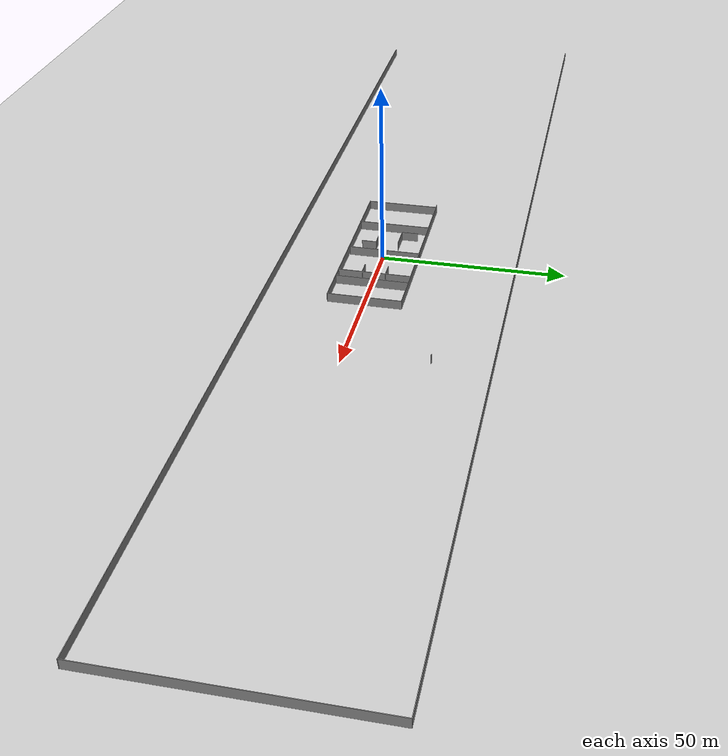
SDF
<sdf version="1.7">
 <world name="default">
  <light name="sun" type="directional">
   <pose>0 0 10 0 -0 0</pose>
   <diffuse>0.8 0.8 0.8 1</diffuse>
   <specular>0.2 0.2 0.2 1</specular>
   <attenuation>
    <range>1000</range>
    <constant>0.9</constant>
    <linear>0.01</linear>
    <quadratic>0.001</quadratic>
   </attenuation>
   <direction>-0.5 0.1 -0.9</direction>
   <spot><inner_angle>0</inner_angle><outer_angle>0</outer_angle><falloff>0</falloff></spot>
  </light>
  <model name="ground_plane">
   <static>1</static>
   <link name="link">
    <collision name="collision">
     <geometry><plane><normal>0 0 1</normal><size>100 100</size></plane></geometry>
     <surface>
      <contact><collide_bitmask>65535</collide_bitmask></contact>
      <friction><ode><mu>100</mu><mu2>50</mu2></ode></friction>
     </surface>
    </collision>
    <visual name="visual">
     <cast_shadows>0</cast_shadows>
     <geometry><plane><normal>0 0 1</normal><size>100 100</size></plane></geometry>
     <material>
      <script><uri>file://media/materials/scripts/gazebo.material</uri><name>Gazebo/Grey</name></script>
     </material>
    </visual>
   </link>
  </model>
  <gravity>0 0 -9.8</gravity>
  <magnetic_field>6e-06 2.3e-05 -4.2e-05</magnetic_field>
  <atmosphere type="adiabatic"/>
  <physics type="ode">
   <max_step_size>0.001</max_step_size>
   <real_time_factor>1</real_time_factor>
   <real_time_update_rate>1000</real_time_update_rate>
  </physics>
  <scene><ambient>0.4 0.4 0.4 1</ambient><background>0.7 0.7 0.7 1</background><shadows>1</shadows></scene>
  <spherical_coordinates>
   <surface_model>EARTH_WGS84</surface_model>
   <latitude_deg>0</latitude_deg>
   <longitude_deg>0</longitude_deg>
   <elevation>0</elevation>
   <heading_deg>0</heading_deg>
  </spherical_coordinates>
  <model name="LabWorld">
   <pose>-3.44193 5.2773 0 0 -0 0</pose>
   <link name="Wall_12">
    <collision name="Wall_12_Collision">
     <geometry><box><size>304 0.15 2.5</size></box></geometry>
     <pose>0 0 1.25 0 -0 0</pose>
    </collision>
    <visual name="Wall_12_Visual">
     <pose>0 0 1.25 0 -0 0</pose>
     <geometry><box><size>304 0.15 2.5</size></box></geometry>
     <material>
      <script><uri>file://media/materials/scripts/gazebo.material</uri><name>Gazebo/Grey</name></script>
      <ambient>1 1 1 1</ambient>
     </material>
     <meta><layer>0</layer></meta>
    </visual>
    <pose>-1e-06 31.675 0 0 -0 0</pose>
   </link>
   <link name="Wall_13">
    <collision name="Wall_13_Collision">
     <geometry><box><size>63.5 0.15 2.5</size></box></geometry>
     <pose>0 0 1.25 0 -0 0</pose>
    </collision>
    <visual name="Wall_13_Visual">
     <pose>0 0 1.25 0 -0 0</pose>
     <geometry><box><size>63.5 0.15 2.5</size></box></geometry>
     <material>
      <script><uri>file://media/materials/scripts/gazebo.material</uri><name>Gazebo/Grey</name></script>
      <ambient>1 1 1 1</ambient>
     </material>
     <meta><layer>0</layer></meta>
    </visual>
    <pose>151.925 1e-06 0 0 -0 -1.5708</pose>
   </link>
   <link name="Wall_14">
    <collision name="Wall_14_Collision">
     <geometry><box><size>295.5 0.15 2.5</size></box></geometry>
     <pose>0 0 1.25 0 -0 0</pose>
    </collision>
    <visual name="Wall_14_Visual">
     <pose>0 0 1.25 0 -0 0</pose>
     <geometry><box><size>295.5 0.15 2.5</size></box></geometry>
     <material>
      <script><uri>file://media/materials/scripts/gazebo.material</uri><name>Gazebo/Grey</name></script>
      <ambient>1 1 1 1</ambient>
     </material>
     <meta><layer>0</layer></meta>
    </visual>
    <pose>4.25 -31.675 0 0 -0 3.14159</pose>
   </link>
   <link name="Wall_16">
    <collision name="Wall_16_Collision">
     <geometry><box><size>0.5 0.15 2.5</size></box></geometry>
     <pose>0 0 1.25 0 -0 0</pose>
    </collision>
    <visual name="Wall_16_Visual">
     <pose>0 0 1.25 0 -0 0</pose>
     <geometry><box><size>0.5 0.15 2.5</size></box></geometry>
     <material>
      <script><uri>file://media/materials/scripts/gazebo.material</uri><name>Gazebo/Grey</name></script>
      <ambient>1 1 1 1</ambient>
     </material>
     <meta><layer>0</layer></meta>
    </visual>
    <pose>49.3487 16.4897 0 0 -0 -0.261799</pose>
   </link>
   <link name="Wall_18">
    <collision name="Wall_18_Collision">
     <geometry><box><size>52.5 0.15 2.5</size></box></geometry>
     <pose>0 0 1.25 0 -0 0</pose>
    </collision>
    <visual name="Wall_18_Visual">
     <pose>0 0 1.25 0 -0 0</pose>
     <geometry><box><size>52.5 0.15 2.5</size></box></geometry>
     <material>
      <script><uri>file://media/materials/scripts/gazebo.material</uri><name>Gazebo/Grey</name></script>
      <ambient>1 1 1 1</ambient>
     </material>
     <meta><layer>0</layer></meta>
    </visual>
    <pose>1.51153 4.82296 0 0 -0 0</pose>
   </link>
   <link name="Wall_19">
    <collision name="Wall_19_Collision">
     <geometry><box><size>19.75 0.15 2.5</size></box></geometry>
     <pose>0 0 1.25 0 -0 0</pose>
    </collision>
    <visual name="Wall_19_Visual">
     <pose>0 0 1.25 0 -0 0</pose>
     <geometry><box><size>19.75 0.15 2.5</size></box></geometry>
     <material>
      <script><uri>file://media/materials/scripts/gazebo.material</uri><name>Gazebo/Grey</name></script>
      <ambient>1 1 1 1</ambient>
     </material>
     <meta><layer>0</layer></meta>
    </visual>
    <pose>27.6865 -4.97704 0 0 -0 -1.5708</pose>
   </link>
   <link name="Wall_20">
    <collision name="Wall_20_Collision">
     <geometry><box><size>51.25 0.15 2.5</size></box></geometry>
     <pose>0 0 1.25 0 -0 0</pose>
    </collision>
    <visual name="Wall_20_Visual">
     <pose>0 0 1.25 0 -0 0</pose>
     <geometry><box><size>51.25 0.15 2.5</size></box></geometry>
     <material>
      <script><uri>file://media/materials/scripts/gazebo.material</uri><name>Gazebo/Grey</name></script>
      <ambient>1 1 1 1</ambient>
     </material>
     <meta><layer>0</layer></meta>
    </visual>
    <pose>2.13653 -14.777 0 0 -0 3.14159</pose>
   </link>
   <link name="Wall_21">
    <collision name="Wall_21_Collision">
     <geometry><box><size>19.5 0.15 2.5</size></box></geometry>
     <pose>0 0 1.25 0 -0 0</pose>
    </collision>
    <visual name="Wall_21_Visual">
     <pose>0 0 1.25 0 -0 0</pose>
     <geometry><box><size>19.5 0.15 2.5</size></box></geometry>
     <material>
      <script><uri>file://media/materials/scripts/gazebo.material</uri><name>Gazebo/Grey</name></script>
      <ambient>1 1 1 1</ambient>
     </material>
     <meta><layer>0</layer></meta>
    </visual>
    <pose>-23.4135 -5.10204 0 0 -0 1.5708</pose>
   </link>
   <link name="Wall_25">
    <collision name="Wall_25_Collision">
     <geometry><box><size>19.75 0.15 2.5</size></box></geometry>
     <pose>0 0 1.25 0 -0 0</pose>
    </collision>
    <visual name="Wall_25_Visual">
     <pose>0 0 1.25 0 -0 0</pose>
     <geometry><box><size>19.75 0.15 2.5</size></box></geometry>
     <material>
      <script><uri>file://media/materials/scripts/gazebo.material</uri><name>Gazebo/Grey</name></script>
      <ambient>1 1 1 1</ambient>
     </material>
     <meta><layer>0</layer></meta>
    </visual>
    <pose>-11.0946 -5.11987 0 0 -0 -1.5708</pose>
   </link>
   <link name="Wall_27">
    <collision name="Wall_27_Collision">
     <geometry><box><size>19.5 0.15 2.5</size></box></geometry>
     <pose>0 0 1.25 0 -0 0</pose>
    </collision>
    <visual name="Wall_27_Visual">
     <pose>0 0 1.25 0 -0 0</pose>
     <geometry><box><size>19.5 0.15 2.5</size></box></geometry>
     <material>
      <script><uri>file://media/materials/scripts/gazebo.material</uri><name>Gazebo/Grey</name></script>
      <ambient>1 1 1 1</ambient>
     </material>
     <meta><layer>0</layer></meta>
    </visual>
    <pose>18.614 -5.1377 0 0 -0 -1.5708</pose>
   </link>
   <link name="Wall_32">
    <collision name="Wall_32_Collision">
     <geometry><box><size>19.5 0.15 2.5</size></box></geometry>
     <pose>0 0 1.25 0 -0 0</pose>
    </collision>
    <visual name="Wall_32_Visual">
     <pose>0 0 1.25 0 -0 0</pose>
     <geometry><box><size>19.5 0.15 2.5</size></box></geometry>
     <material>
      <script><uri>file://media/materials/scripts/gazebo.material</uri><name>Gazebo/Grey</name></script>
      <ambient>1 1 1 1</ambient>
     </material>
     <meta><layer>0</layer></meta>
    </visual>
    <pose>15.4718 -5.1377 0 0 -0 -1.5708</pose>
   </link>
   <link name="Wall_34">
    <collision name="Wall_34_Collision">
     <geometry><box><size>8.25 0.15 2.5</size></box></geometry>
     <pose>0 0 1.25 0 -0 0</pose>
    </collision>
    <visual name="Wall_34_Visual">
     <pose>0 0 1.25 0 -0 0</pose>
     <geometry><box><size>8.25 0.15 2.5</size></box></geometry>
     <material>
      <script><uri>file://media/materials/scripts/gazebo.material</uri><name>Gazebo/Grey</name></script>
      <ambient>1 1 1 1</ambient>
     </material>
     <meta><layer>0</layer></meta>
    </visual>
    <pose>3.33121 -10.4091 0 0 -0 1.5708</pose>
   </link>
   <link name="Wall_37">
    <collision name="Wall_37_Collision">
     <geometry><box><size>9.25 0.15 2.5</size></box></geometry>
     <pose>0 0 1.25 0 -0 0</pose>
    </collision>
    <visual name="Wall_37_Visual">
     <pose>0 0 1.25 0 -0 0</pose>
     <geometry><box><size>9.25 0.15 2.5</size></box></geometry>
     <material>
      <script><uri>file://media/materials/scripts/gazebo.material</uri><name>Gazebo/Grey</name></script>
      <ambient>1 1 1 1</ambient>
     </material>
     <meta><layer>0</layer></meta>
    </visual>
    <pose>3.47404 0.415791 0 0 -0 -1.5708</pose>
   </link>
   <link name="Wall_39">
    <collision name="Wall_39_Collision">
     <geometry><box><size>4.5 0.15 2.5</size></box></geometry>
     <pose>0 0 1.25 0 -0 0</pose>
    </collision>
    <visual name="Wall_39_Visual">
     <pose>0 0 1.25 0 -0 0</pose>
     <geometry><box><size>4.5 0.15 2.5</size></box></geometry>
     <material>
      <script><uri>file://media/materials/scripts/gazebo.material</uri><name>Gazebo/Grey</name></script>
      <ambient>1 1 1 1</ambient>
     </material>
     <meta><layer>0</layer></meta>
    </visual>
    <pose>-7.23821 0.219851 0 0 -0 -1.5708</pose>
   </link>
   <link name="Wall_40">
    <collision name="Wall_40_Collision">
     <geometry><box><size>6.25 0.15 2.5</size></box></geometry>
     <pose>0 0 1.25 0 -0 0</pose>
    </collision>
    <visual name="Wall_40_Visual">
     <pose>0 0 1.25 0 -0 0</pose>
     <geometry><box><size>6.25 0.15 2.5</size></box></geometry>
     <material>
      <script><uri>file://media/materials/scripts/gazebo.material</uri><name>Gazebo/Grey</name></script>
      <ambient>1 1 1 1</ambient>
     </material>
     <meta><layer>0</layer></meta>
    </visual>
    <pose>-4.18821 -1.95515 0 0 -0 0</pose>
   </link>
   <link name="Wall_42">
    <collision name="Wall_42_Collision">
     <geometry><box><size>6.5 0.15 2.5</size></box></geometry>
     <pose>0 0 1.25 0 -0 0</pose>
    </collision>
    <visual name="Wall_42_Visual">
     <pose>0 0 1.25 0 -0 0</pose>
     <geometry><box><size>6.5 0.15 2.5</size></box></geometry>
     <material>
      <script><uri>file://media/materials/scripts/gazebo.material</uri><name>Gazebo/Grey</name></script>
      <ambient>1 1 1 1</ambient>
     </material>
     <meta><layer>0</layer></meta>
    </visual>
    <pose>-3.77755 -8.03174 0 0 -0 0</pose>
   </link>
   <link name="Wall_43">
    <collision name="Wall_43_Collision">
     <geometry><box><size>4 0.15 2.5</size></box></geometry>
     <pose>0 0 1.25 0 -0 0</pose>
    </collision>
    <visual name="Wall_43_Visual">
     <pose>0 0 1.25 0 -0 0</pose>
     <geometry><box><size>4 0.15 2.5</size></box></geometry>
     <material>
      <script><uri>file://media/materials/scripts/gazebo.material</uri><name>Gazebo/Grey</name></script>
      <ambient>1 1 1 1</ambient>
     </material>
     <meta><layer>0</layer></meta>
    </visual>
    <pose>-0.602551 -9.95674 0 0 -0 -1.5708</pose>
   </link>
   <link name="Wall_45">
    <collision name="Wall_45_Collision">
     <geometry><box><size>4 0.15 2.5</size></box></geometry>
     <pose>0 0 1.25 0 -0 0</pose>
    </collision>
    <visual name="Wall_45_Visual">
     <pose>0 0 1.25 0 -0 0</pose>
     <geometry><box><size>4 0.15 2.5</size></box></geometry>
     <material>
      <script><uri>file://media/materials/scripts/gazebo.material</uri><name>Gazebo/Grey</name></script>
      <ambient>1 1 1 1</ambient>
     </material>
     <meta><layer>0</layer></meta>
    </visual>
    <pose>13.5514 -1.98365 0 0 -0 3.14159</pose>
   </link>
   <link name="Wall_47">
    <collision name="Wall_47_Collision">
     <geometry><box><size>3.75 0.15 2.5</size></box></geometry>
     <pose>0 0 1.25 0 -0 0</pose>
    </collision>
    <visual name="Wall_47_Visual">
     <pose>0 0 1.25 0 -0 0</pose>
     <geometry><box><size>3.75 0.15 2.5</size></box></geometry>
     <material>
      <script><uri>file://media/materials/scripts/gazebo.material</uri><name>Gazebo/Grey</name></script>
      <ambient>1 1 1 1</ambient>
     </material>
     <meta><layer>0</layer></meta>
    </visual>
    <pose>13.6764 -8.31785 0 0 -0 3.14159</pose>
   </link>
   <static>1</static>
  </model>
 </world>
</sdf>
